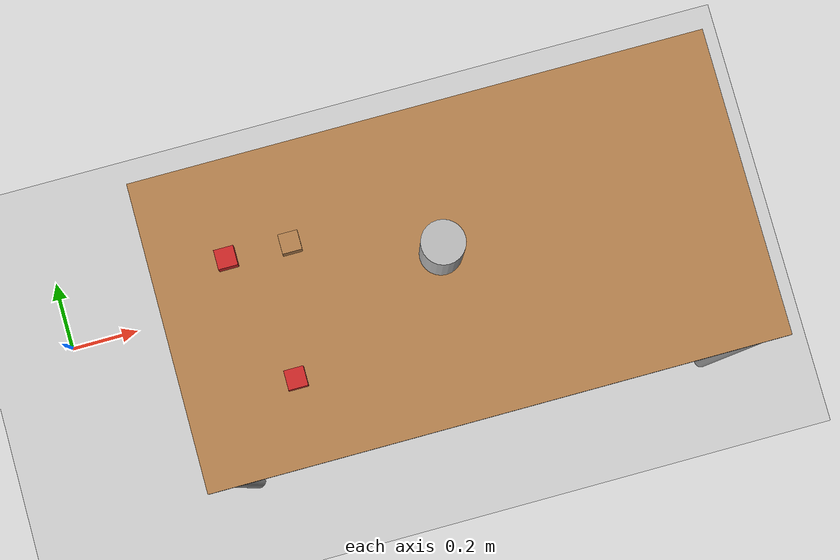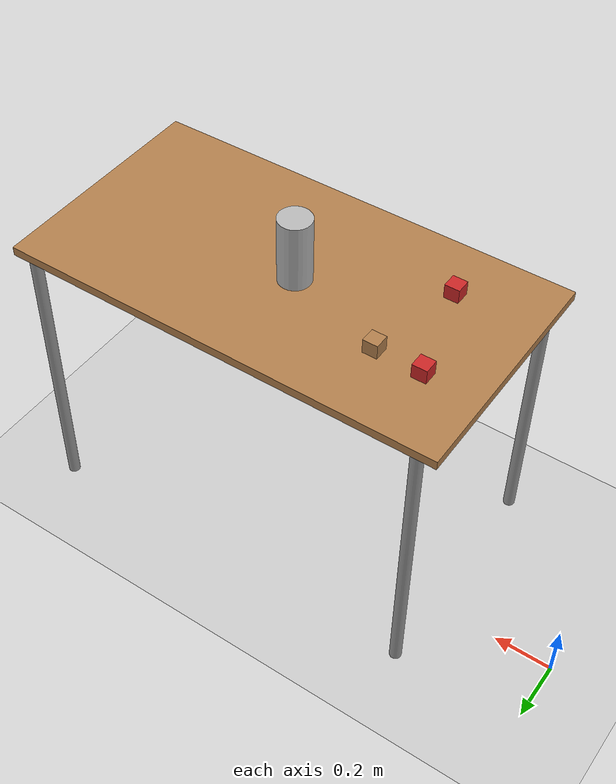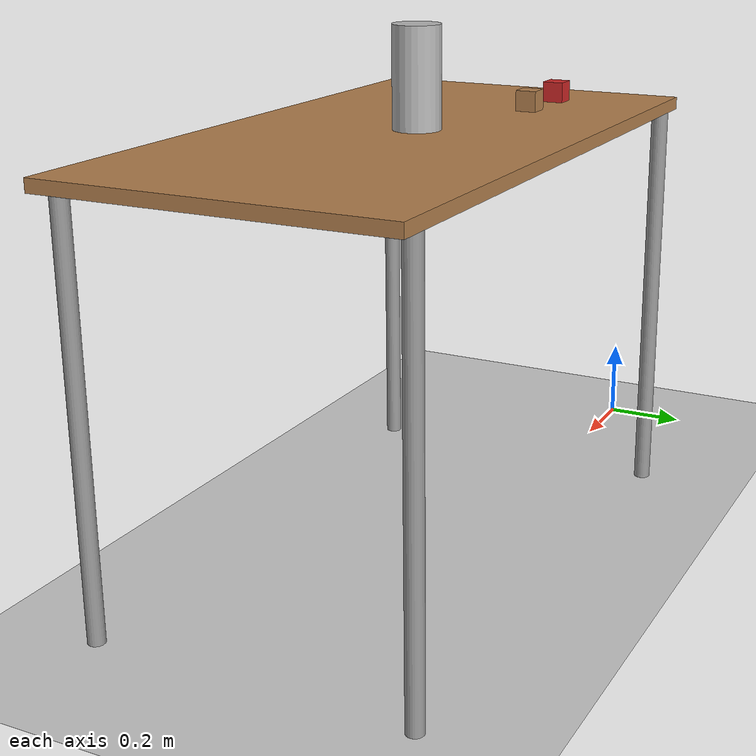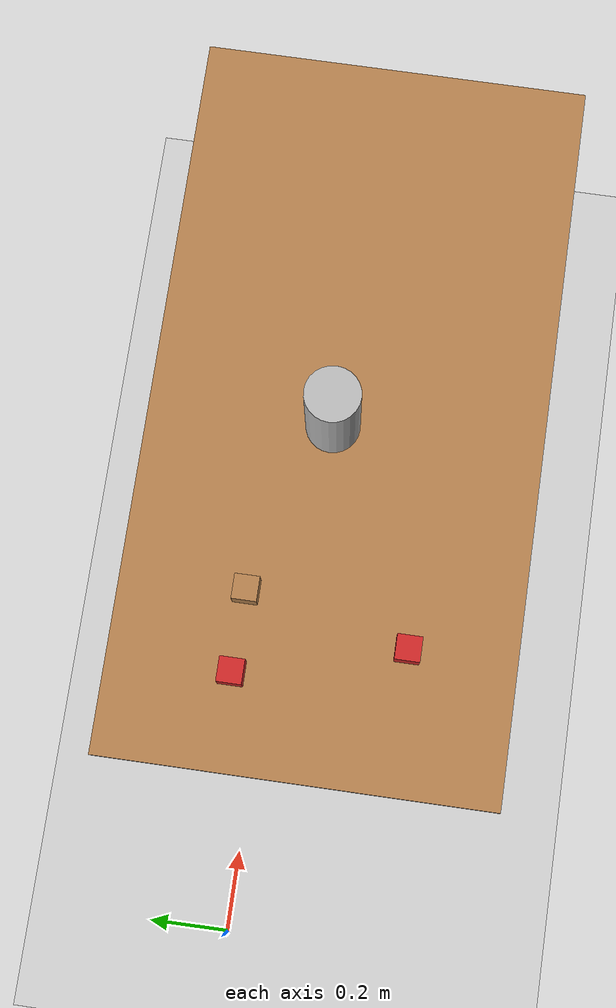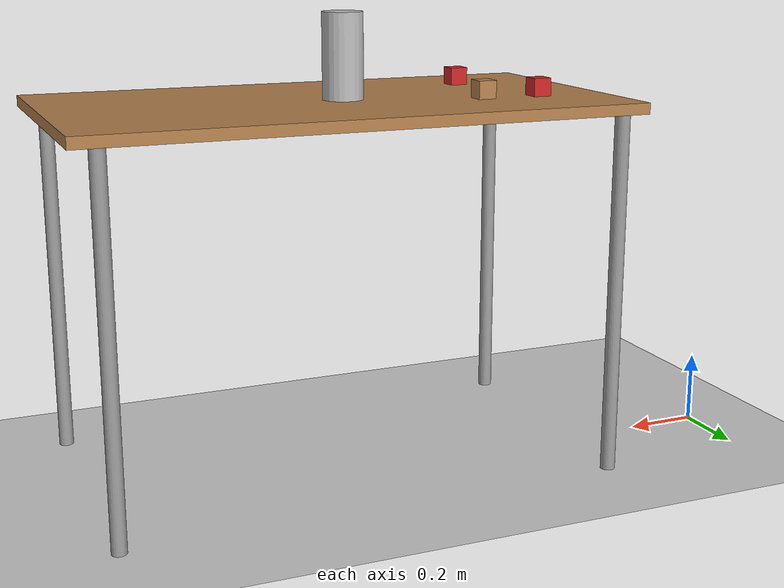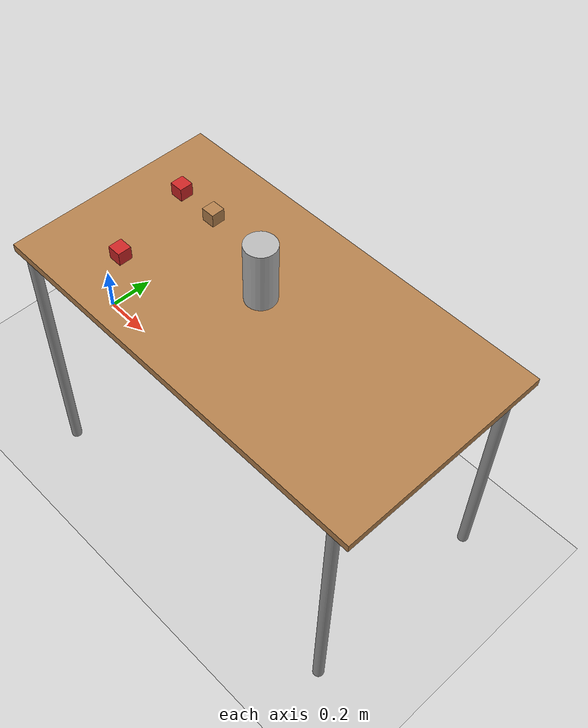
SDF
<sdf version="1.7">
 <world name="ur10e_cubes">
  <gravity>0 0 -9.81</gravity>
  <physics name="default_physics" default="0" type="ode">
   <max_step_size>0.001</max_step_size>
   <real_time_factor>1</real_time_factor>
   <real_time_update_rate>1000</real_time_update_rate>
  </physics>
  <scene><ambient>0.4 0.4 0.4 1</ambient><background>0.7 0.7 0.7 1</background><shadows>1</shadows></scene>
  <light name="sun" type="directional">
   <pose>0 0 10 0 -0 0</pose>
   <diffuse>0.8 0.8 0.8 1</diffuse>
   <specular>0.2 0.2 0.2 1</specular>
   <attenuation>
    <range>1000</range>
    <constant>0.9</constant>
    <linear>0.01</linear>
    <quadratic>0.001</quadratic>
   </attenuation>
   <direction>-0.5 0.1 -0.9</direction>
   <spot><inner_angle>0</inner_angle><outer_angle>0</outer_angle><falloff>0</falloff></spot>
  </light>
  <model name="ground_plane">
   <static>1</static>
   <link name="link">
    <collision name="collision">
     <geometry><plane><normal>0 0 1</normal><size>100 100</size></plane></geometry>
     <surface>
      <contact><collide_bitmask>65535</collide_bitmask></contact>
      <friction><ode><mu>100</mu><mu2>50</mu2></ode></friction>
     </surface>
    </collision>
    <visual name="visual">
     <cast_shadows>0</cast_shadows>
     <geometry><plane><normal>0 0 1</normal><size>100 100</size></plane></geometry>
     <material>
      <script><uri>file://media/materials/scripts/gazebo.material</uri><name>Gazebo/Grey</name></script>
     </material>
    </visual>
   </link>
  </model>
  <model name="cube1">
   <pose>0.649047 -0.328598 1.014 0 -0 0</pose>
   <link name="link">
    <pose>0 0 0.025 0 -0 0</pose>
    <inertial>
     <mass>0.0565</mass>
     <inertia>
      <ixx>2.35417e-05</ixx>
      <ixy>0</ixy>
      <ixz>0</ixz>
      <iyy>2.35417e-05</iyy>
      <iyz>0</iyz>
      <izz>2.35417e-05</izz>
     </inertia>
    </inertial>
    <collision name="collision">
     <geometry><box><size>0.05 0.05 0.05</size></box></geometry>
     <surface>
      <contact>
       <poissons_ratio>0.347</poissons_ratio>
       <elastic_modulus>8.8e+09</elastic_modulus>
       <ode><kp>100000</kp><kd>1</kd><max_vel>1</max_vel><min_depth>0.001</min_depth></ode>
      </contact>
      <friction>
       <torsional>
        <coefficient>1</coefficient>
        <use_patch_radius>0</use_patch_radius>
        <surface_radius>0.05</surface_radius>
       </torsional>
      </friction>
     </surface>
    </collision>
    <visual name="visual">
     <geometry><box><size>0.05 0.05 0.05</size></box></geometry>
     <material>
      <script><uri>file://media/materials/scripts/gazebo.material</uri><name>Gazebo/Red</name></script>
     </material>
    </visual>
   </link>
  </model>
  <model name="cube2">
   <pose>0.558753 0.004422 1.014 0 -0 0</pose>
   <link name="link">
    <pose>0 0 0.025 0 -0 0</pose>
    <inertial>
     <mass>0.0565</mass>
     <inertia>
      <ixx>2.35417e-05</ixx>
      <ixy>0</ixy>
      <ixz>0</ixz>
      <iyy>2.35417e-05</iyy>
      <iyz>0</iyz>
      <izz>2.35417e-05</izz>
     </inertia>
    </inertial>
    <collision name="collision">
     <geometry><box><size>0.05 0.05 0.05</size></box></geometry>
     <surface>
      <contact>
       <poissons_ratio>0.347</poissons_ratio>
       <elastic_modulus>8.8e+09</elastic_modulus>
       <ode><kp>100000</kp><kd>1</kd><max_vel>1</max_vel><min_depth>0.001</min_depth></ode>
      </contact>
      <friction>
       <torsional>
        <coefficient>1</coefficient>
        <use_patch_radius>0</use_patch_radius>
        <surface_radius>0.05</surface_radius>
       </torsional>
      </friction>
     </surface>
    </collision>
    <visual name="visual">
     <geometry><box><size>0.05 0.05 0.05</size></box></geometry>
     <material>
      <script><uri>file://media/materials/scripts/gazebo.material</uri><name>Gazebo/Red</name></script>
     </material>
    </visual>
   </link>
  </model>
  <model name="cube3">
   <pose>0.721499 4.3e-05 1.014 0 -0 9.5e-05</pose>
   <link name="link">
    <pose>0 0 0.025 0 -0 0</pose>
    <inertial>
     <mass>0.0565</mass>
     <inertia>
      <ixx>2.35417e-05</ixx>
      <ixy>0</ixy>
      <ixz>0</ixz>
      <iyy>2.35417e-05</iyy>
      <iyz>0</iyz>
      <izz>2.35417e-05</izz>
     </inertia>
    </inertial>
    <collision name="collision">
     <geometry><box><size>0.15 0.05 0.05</size></box></geometry>
     <surface>
      <contact>
       <poissons_ratio>0.347</poissons_ratio>
       <elastic_modulus>8.8e+09</elastic_modulus>
       <ode><kp>100000</kp><kd>1</kd><max_vel>1</max_vel><min_depth>0.001</min_depth></ode>
      </contact>
      <friction>
       <torsional>
        <coefficient>1</coefficient>
        <use_patch_radius>0</use_patch_radius>
        <surface_radius>0.05</surface_radius>
       </torsional>
      </friction>
     </surface>
    </collision>
    <visual name="visual">
     <geometry><box><size>0.05 0.05 0.05</size></box></geometry>
     <material>
      <script><uri>file://media/materials/scripts/gazebo.material</uri><name>Gazebo/WoodPallet</name></script>
     </material>
    </visual>
   </link>
  </model>
  <magnetic_field>6e-06 2.3e-05 -4.2e-05</magnetic_field>
  <atmosphere type="adiabatic"/>
  <spherical_coordinates>
   <surface_model>EARTH_WGS84</surface_model>
   <latitude_deg>0</latitude_deg>
   <longitude_deg>0</longitude_deg>
   <elevation>0</elevation>
   <heading_deg>0</heading_deg>
  </spherical_coordinates>
  <model name="table">
   <static>1</static>
   <link name="link">
    <collision name="surface">
     <pose>0 0 1 0 -0 0</pose>
     <geometry><box><size>1.5 0.8 0.03</size></box></geometry>
     <surface><friction><ode><mu>0.6</mu><mu2>0.6</mu2></ode></friction></surface>
    </collision>
    <visual name="visual1">
     <pose>0 0 1 0 -0 0</pose>
     <geometry><box><size>1.5 0.8 0.03</size></box></geometry>
     <material>
      <script><uri>file://media/materials/scripts/gazebo.material</uri><name>Gazebo/Wood</name></script>
     </material>
    </visual>
    <collision name="front_left_leg">
     <pose>0.68 0.38 0.5 0 -0 0</pose>
     <geometry><cylinder><radius>0.02</radius><length>1</length></cylinder></geometry>
    </collision>
    <visual name="front_left_leg">
     <pose>0.68 0.38 0.5 0 -0 0</pose>
     <geometry><cylinder><radius>0.02</radius><length>1</length></cylinder></geometry>
     <material>
      <script><uri>file://media/materials/scripts/gazebo.material</uri><name>Gazebo/Grey</name></script>
     </material>
    </visual>
    <collision name="front_right_leg">
     <pose>0.68 -0.38 0.5 0 -0 0</pose>
     <geometry><cylinder><radius>0.02</radius><length>1</length></cylinder></geometry>
    </collision>
    <visual name="front_right_leg">
     <pose>0.68 -0.38 0.5 0 -0 0</pose>
     <geometry><cylinder><radius>0.02</radius><length>1</length></cylinder></geometry>
     <material>
      <script><uri>file://media/materials/scripts/gazebo.material</uri><name>Gazebo/Grey</name></script>
     </material>
    </visual>
    <collision name="back_right_leg">
     <pose>-0.68 -0.38 0.5 0 -0 0</pose>
     <geometry><cylinder><radius>0.02</radius><length>1</length></cylinder></geometry>
    </collision>
    <visual name="back_right_leg">
     <pose>-0.68 -0.38 0.5 0 -0 0</pose>
     <geometry><cylinder><radius>0.02</radius><length>1</length></cylinder></geometry>
     <material>
      <script><uri>file://media/materials/scripts/gazebo.material</uri><name>Gazebo/Grey</name></script>
     </material>
    </visual>
    <collision name="back_left_leg">
     <pose>-0.68 0.38 0.5 0 -0 0</pose>
     <geometry><cylinder><radius>0.02</radius><length>1</length></cylinder></geometry>
    </collision>
    <visual name="back_left_leg">
     <pose>-0.68 0.38 0.5 0 -0 0</pose>
     <geometry><cylinder><radius>0.02</radius><length>1</length></cylinder></geometry>
     <material>
      <script><uri>file://media/materials/scripts/gazebo.material</uri><name>Gazebo/Grey</name></script>
     </material>
    </visual>
   </link>
   <pose>1.11427 -0.145518 0 0 -0 0</pose>
  </model>
  <model name="beer">
   <link name="link">
    <pose>0 0 0.115 0 -0 0</pose>
    <inertial>
     <mass>0.39</mass>
     <inertia><ixx>0.00058</ixx><ixy>0</ixy><ixz>0</ixz><iyy>0.00058</iyy><iyz>0</iyz><izz>0.00019</izz></inertia>
    </inertial>
    <collision name="collision">
     <geometry><cylinder><radius>0.055</radius><length>0.23</length></cylinder></geometry>
    </collision>
    <visual name="visual">
     <geometry><cylinder><radius>0.055</radius><length>0.23</length></cylinder></geometry>
     <material>
      <script>
       <uri>model://beer/materials/scripts</uri>
       <uri>model://beer/materials/textures</uri>
       <name>Beer/Diffuse</name>
      </script>
     </material>
    </visual>
   </link>
   <pose>1.07694 -0.120681 1.015 2.1e-05 -2e-05 0.002188</pose>
  </model>
 </world>
</sdf>
